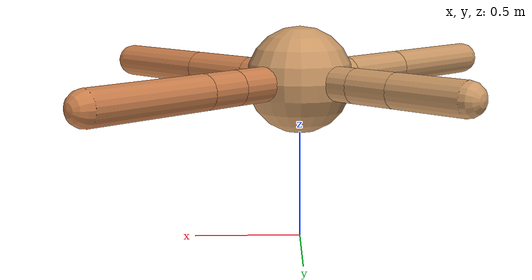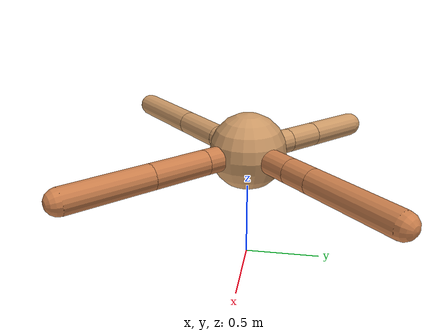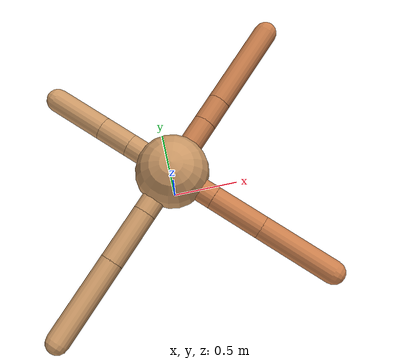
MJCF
<mujoco model="ant">
  <compiler angle="degree" coordinate="local" inertiafromgeom="true" />
  <option integrator="RK4" timestep="0.01" />
  <custom>
    <numeric data="0.0 0.0 0.55 1.0 0.0 0.0 0.0 0.0 1.0 0.0 -1.0 0.0 -1.0 0.0 1.0" name="init_qpos" />
  </custom>
  <default>
    <joint armature="1" damping="1" limited="true" />
    <geom conaffinity="0" condim="3" density="5.0" friction="1.5 0.1 0.1" margin="0.01" rgba="0.8 0.6 0.4 1" />
  </default>
  <worldbody>
    <body name="torso" pos="0 0 0.75">
      <geom name="torso_geom" pos="0 0 0" size="0.25" type="sphere" />

      <body name="front_left_leg" pos="0 0 0">
        <geom fromto="0.0 0.0 0.0 0.2885732991580521 0.2885732991580521 0.0" name="aux_1_geom" size="0.08" type="capsule" rgba=".8 .5 .3 1" />
        <body name="aux_1" pos="0.2885732991580521 0.2885732991580521 0.0">
          <joint axis="0 0 1" name="hip_1" pos="0.0 0.0 0.0" range="-40 40" type="hinge" />
          <geom fromto="0.0 0.0 0.0 0.1285015243944903 0.1285015243944903 0.0" name="left_leg_geom" size="0.08" type="capsule" rgba=".8 .5 .3 1" />
          <body pos="0.1285015243944903 0.1285015243944903 0.0" name="front_left_foot">
            <joint axis="-1 1 0" name="ankle_1" pos="0.0 0.0 0.0" range="30 100" type="hinge" />
            <geom fromto="0.0 0.0 0.0 0.4359803280355702 0.4359803280355702 0.0" name="left_ankle_geom" size="0.08" type="capsule" rgba=".8 .5 .3 1" />
          </body>
        </body>
      </body>
      <body name="front_right_leg" pos="0 0 0">
        <geom fromto="0.0 0.0 0.0 -0.2396788184067542 0.2396788184067542 0.0" name="aux_2_geom" size="0.08" type="capsule" />
        <body name="aux_2" pos="-0.2396788184067542 0.2396788184067542 0.0">
          <joint axis="0 0 1" name="hip_2" pos="0.0 0.0 0.0" range="-40 40" type="hinge" />
          <geom fromto="0.0 0.0 0.0 -0.1579580578045676 0.1579580578045676 0.0" name="right_leg_geom" size="0.08" type="capsule" />
          <body pos="-0.1579580578045676 0.1579580578045676 0.0" name="front_right_foot">
            <joint axis="1 1 0" name="ankle_2" pos="0.0 0.0 0.0" range="-100 -30" type="hinge" />
            <geom fromto="0.0 0.0 0.0 -0.2656008478106619 0.2656008478106619 0.0" name="right_ankle_geom" size="0.08" type="capsule" />
          </body>
        </body>
      </body>
      <body name="left_back_leg" pos="0 0 0">
        <geom fromto="0.0 0.0 0.0 -0.23691858270105481 -0.23691858270105481 0.0" name="aux_3_geom" size="0.08" type="capsule" />
        <body name="aux_3" pos="-0.23691858270105481 -0.23691858270105481 0.0">
          <joint axis="0 0 1" name="hip_3" pos="0.0 0.0 0.0" range="-40 40" type="hinge" />
          <geom fromto="0.0 0.0 0.0 -0.2690571805309941 -0.2690571805309941 0.0" name="back_leg_geom" size="0.08" type="capsule" />
          <body pos="-0.2690571805309941 -0.2690571805309941 0.0" name="left_back_foot">
            <joint axis="-1 1 0" name="ankle_3" pos="0.0 0.0 0.0" range="-100 -30" type="hinge" />
            <geom fromto="0.0 0.0 0.0 -0.4246275400918064 -0.4246275400918064 0.0" name="third_ankle_geom" size="0.08" type="capsule" />
          </body>
        </body>
      </body>
      <body name="right_back_leg" pos="0 0 0">
        <geom fromto="0.0 0.0 0.0 0.234882628264009 -0.234882628264009 0.0" name="aux_4_geom" size="0.08" type="capsule" rgba=".8 .5 .3 1" />
        <body name="aux_4" pos="0.234882628264009 -0.234882628264009 0.0">
          <joint axis="0 0 1" name="hip_4" pos="0.0 0.0 0.0" range="-40 40" type="hinge" />
          <geom fromto="0.0 0.0 0.0 0.2599142833518231 -0.2599142833518231 0.0" name="rightback_leg_geom" size="0.08" type="capsule" rgba=".8 .5 .3 1" />
          <body pos="0.2599142833518231 -0.2599142833518231 0.0" name="right_back_foot">
            <joint axis="1 1 0" name="ankle_4" pos="0.0 0.0 0.0" range="30 100" type="hinge" />
            <geom fromto="0.0 0.0 0.0 0.3826123903909669 -0.3826123903909669 0.0" name="fourth_ankle_geom" size="0.08" type="capsule" rgba=".8 .5 .3 1" />
          </body>
        </body>
      </body>
    </body>
  </worldbody>
  <actuator>
    <motor ctrllimited="true" ctrlrange="-1.0 1.0" joint="hip_4" gear="150" />
    <motor ctrllimited="true" ctrlrange="-1.0 1.0" joint="ankle_4" gear="150" />
    <motor ctrllimited="true" ctrlrange="-1.0 1.0" joint="hip_1" gear="150" />
    <motor ctrllimited="true" ctrlrange="-1.0 1.0" joint="ankle_1" gear="150" />
    <motor ctrllimited="true" ctrlrange="-1.0 1.0" joint="hip_2" gear="150" />
    <motor ctrllimited="true" ctrlrange="-1.0 1.0" joint="ankle_2" gear="150" />
    <motor ctrllimited="true" ctrlrange="-1.0 1.0" joint="hip_3" gear="150" />
    <motor ctrllimited="true" ctrlrange="-1.0 1.0" joint="ankle_3" gear="150" />
  </actuator>
</mujoco>
